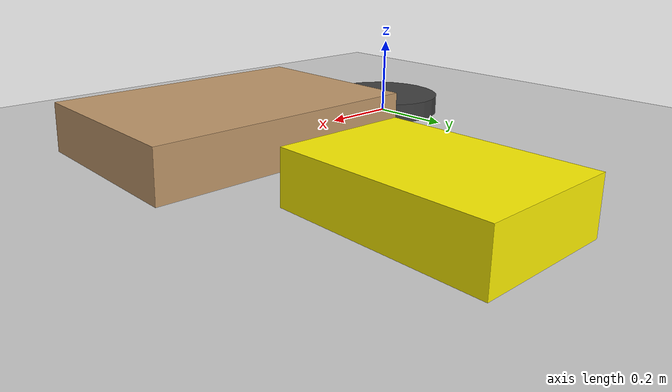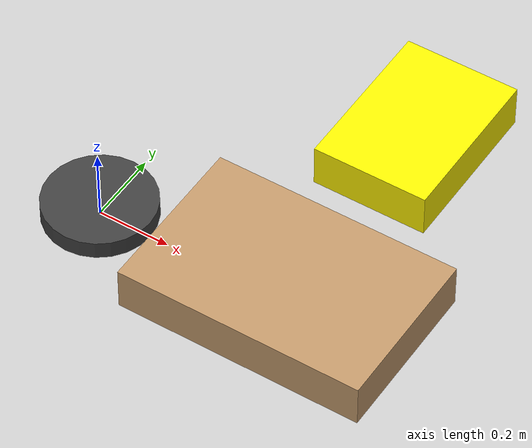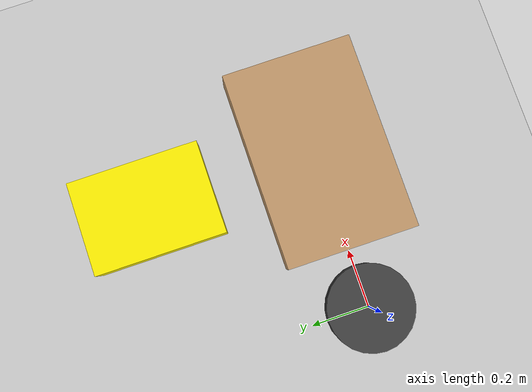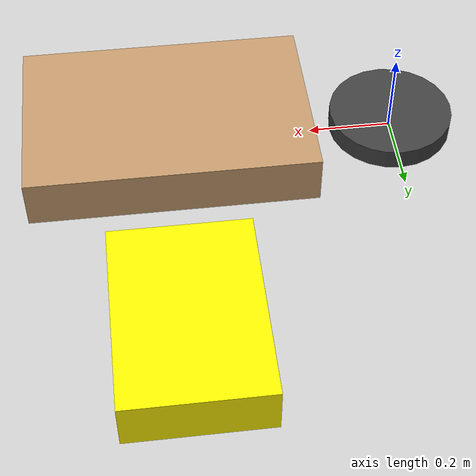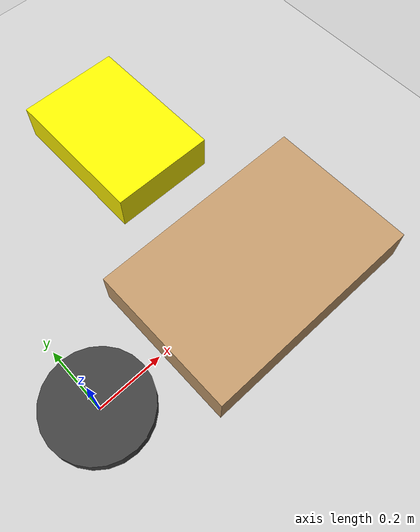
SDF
<sdf version='1.7'>
  <world name='default'>
    <light name='sun' type='directional'>
      <cast_shadows>1</cast_shadows>
      <pose>0 0 10 0 -0 0</pose>
      <diffuse>0.8 0.8 0.8 1</diffuse>
      <specular>0.2 0.2 0.2 1</specular>
      <attenuation>
        <range>1000</range>
        <constant>0.9</constant>
        <linear>0.01</linear>
        <quadratic>0.001</quadratic>
      </attenuation>
      <direction>-0.5 0.1 -0.9</direction>
      <spot>
        <inner_angle>0</inner_angle>
        <outer_angle>0</outer_angle>
        <falloff>0</falloff>
      </spot>
    </light>

    <!-- ── Ground plane ─────────────────────────────────────────────────── -->
    <model name='ground_plane'>
      <static>1</static>
      <link name='link'>
        <collision name='collision'>
          <geometry>
            <plane>
              <normal>0 0 1</normal>
              <size>100 100</size>
            </plane>
          </geometry>
          <surface>
            <friction>
              <ode>
                <mu>100</mu>
                <mu2>50</mu2>
              </ode>
            </friction>
            <contact><ode/></contact>
            <bounce/>
          </surface>
          <max_contacts>10</max_contacts>
        </collision>
        <visual name='visual'>
          <cast_shadows>0</cast_shadows>
          <geometry>
            <plane>
              <normal>0 0 1</normal>
              <size>100 100</size>
            </plane>
          </geometry>
          <material>
            <script>
              <uri>file://media/materials/scripts/gazebo.material</uri>
              <n>Gazebo/Grey</n>
            </script>
          </material>
        </visual>
        <self_collide>0</self_collide>
        <kinematic>0</kinematic>
      </link>
    </model>

    <!-- ── Robot pedestal: 5 cm tall cylinder stand ──────────────────────── -->
    <model name='robot_pedestal'>
      <static>1</static>
      <pose>0 0 0.025 0 0 0</pose>
      <link name='link'>
        <collision name='collision'>
          <geometry>
            <cylinder><radius>0.15</radius><length>0.05</length></cylinder>
          </geometry>
        </collision>
        <visual name='visual'>
          <geometry>
            <cylinder><radius>0.15</radius><length>0.05</length></cylinder>
          </geometry>
          <material>
            <ambient>0.25 0.25 0.25 1</ambient>
            <diffuse>0.25 0.25 0.25 1</diffuse>
            <specular>0.01 0.01 0.01 1</specular>
          </material>
        </visual>
        <self_collide>0</self_collide>
        <kinematic>0</kinematic>
      </link>
    </model>

    <model name='tray_pick'>
      <static>1</static>
      <pose>0.55 0.0 0.06 0 0 0</pose>
      <link name='link'>
        <collision name='collision'>
          <geometry>
            <box><size>0.68 0.45 0.12</size></box>
          </geometry>
        </collision>
        <visual name='visual'>
          <geometry>
            <box><size>0.68 0.45 0.12</size></box>
          </geometry>
          <material>
            <!-- Light brown: RGB(0.76, 0.60, 0.42) -->
            <ambient>0.76 0.60 0.42 1</ambient>
            <diffuse>0.76 0.60 0.42 1</diffuse>
            <specular>0.05 0.04 0.03 1</specular>
            <emissive>0 0 0 1</emissive>
          </material>
        </visual>
        <self_collide>0</self_collide>
        <kinematic>0</kinematic>
      </link>
    </model>

    <!-- ── Tray 2 — Place bin (yellow, 32×45×12 cm) ─────────────────────────
         Centre: (0.55, 0.60, 0.06). Floor on ground plane. -->
    <model name='tray_place'>
      <static>1</static>
      <pose>0.55 0.60 0.06 0 0 0</pose>
      <link name='link'>
        <collision name='collision'>
          <geometry>
            <box><size>0.32 0.45 0.12</size></box>
          </geometry>
        </collision>
        <visual name='visual'>
          <geometry>
            <box><size>0.32 0.45 0.12</size></box>
          </geometry>
          <material>
            <!-- Yellow: RGB(1.0, 0.95, 0.0) -->
            <ambient>1.0 0.95 0.0 1</ambient>
            <diffuse>1.0 0.95 0.0 1</diffuse>
            <specular>0.05 0.05 0.0 1</specular>
            <emissive>0 0 0 1</emissive>
          </material>
        </visual>
        <self_collide>0</self_collide>
        <kinematic>0</kinematic>
      </link>
    </model>

    <!-- ── Sample object for testing (small green cube inside pick tray) ───── -->
    <model name='cube_pick'>
      <link name='link_1'>
        <inertial>
          <mass>0.1</mass>
          <inertia>
            <ixx>0.000016667</ixx><ixy>0</ixy><ixz>0</ixz>
            <iyy>0.000016667</iyy><iyz>0</iyz>
            <izz>0.000016667</izz>
          </inertia>
          <pose>0 0 0 0 0 0</pose>
        </inertial>
        <pose>0 0 0 0 0 0</pose>
        <gravity>1</gravity>
        <self_collide>0</self_collide>
        <kinematic>0</kinematic>
        <visual name='visual'>
          <pose>0 0 0 0 0 0</pose>
          <geometry>
            <box><size>0.05 0.05 0.05</size></box>
          </geometry>
          <material>
            <ambient>0 0.8 0 1</ambient>
            <diffuse>0 0.8 0 1</diffuse>
            <specular>0.01 0.01 0.01 1</specular>
            <emissive>0 0 0 1</emissive>
          </material>
          <transparency>0</transparency>
          <cast_shadows>1</cast_shadows>
        </visual>
        <collision name='collision'>
          <pose>0 0 0 0 0 0</pose>
          <geometry>
            <box><size>0.05 0.05 0.05</size></box>
          </geometry>
          <surface>
            <friction>
              <ode><mu>1</mu><mu2>1</mu2></ode>
            </friction>
            <contact><ode/></contact>
          </surface>
        </collision>
      </link>
      <static>0</static>
      <!-- Place cube on tray_pick floor: tray bottom = 0.0, cube half = 0.025 -->
      <pose>0.55 0.0 0.025 0 0 0</pose>
    </model>

    <gravity>0 0 -9.8</gravity>
    <magnetic_field>6e-06 2.3e-05 -4.2e-05</magnetic_field>
    <atmosphere type='adiabatic'/>
    <physics type='ode'>
      <max_step_size>0.001</max_step_size>
      <real_time_factor>1</real_time_factor>
      <real_time_update_rate>1000</real_time_update_rate>
    </physics>
    <scene>
      <ambient>0.4 0.4 0.4 1</ambient>
      <background>0.7 0.7 0.7 1</background>
      <shadows>1</shadows>
    </scene>
    <audio><device>default</device></audio>
    <wind/>
    <spherical_coordinates>
      <surface_model>EARTH_WGS84</surface_model>
      <latitude_deg>0</latitude_deg>
      <longitude_deg>0</longitude_deg>
      <elevation>0</elevation>
      <heading_deg>0</heading_deg>
    </spherical_coordinates>

    <gui fullscreen='0'>
      <!-- Camera positioned to give a clear view of the robot and trays -->
      <camera name='user_camera'>
        <pose>2.5 -2.0 2.0 0 0.45 2.3</pose>
        <view_controller>orbit</view_controller>
        <projection_type>perspective</projection_type>
      </camera>
    </gui>
    <plugin name="gazebo_link_attacher" filename="libgazebo_link_attacher.so"/>
  </world>
</sdf>
